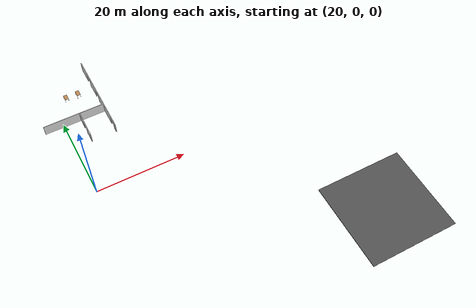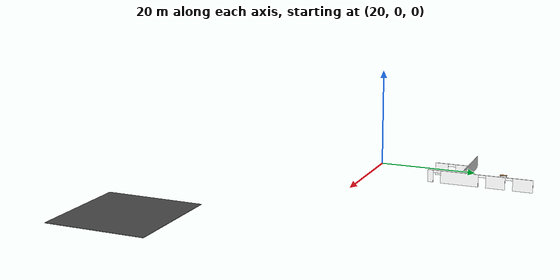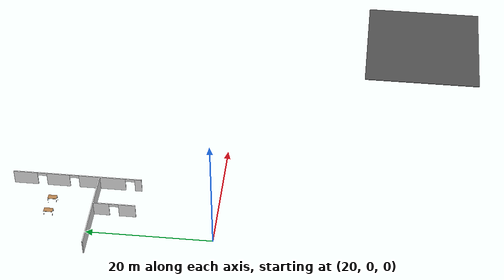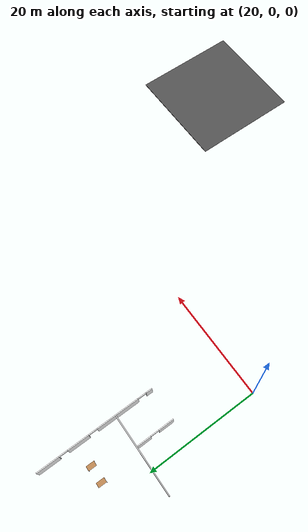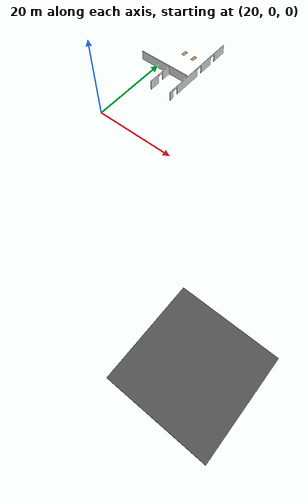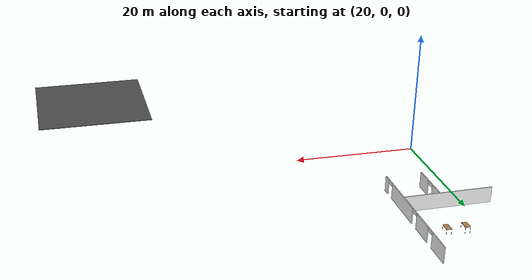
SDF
<sdf version="1.6">
 <world name="default">
  <model name="mainoffice">
   <pose>42.7555 15.4488 0 0 -0 0</pose>
   <link name="Wall_86">
    <pose>-13.0991 7.625 0 0 -0 1.5708</pose>
    <visual name="Wall_86_Visual_0">
     <pose>-9.82339 0 1.25 0 -0 0</pose>
     <geometry><box><size>1.10323 0.15 2.5</size></box></geometry>
     <material>
      <script>
       <uri>model://office_env/materials/scripts</uri>
       <uri>model://office_env/materials/textures</uri>
       <name>wall</name>
      </script>
      <ambient>1 1 1 1</ambient>
     </material>
    </visual>
    <collision name="Wall_86_Collision_0">
     <geometry><box><size>1.10323 0.15 2.5</size></box></geometry>
     <pose>-9.82339 0 1.25 0 -0 0</pose>
    </collision>
    <visual name="Wall_86_Visual_1">
     <pose>-3.99947 0 1.25 0 -0 0</pose>
     <geometry><box><size>7.5446 0.15 2.5</size></box></geometry>
     <material>
      <script>
       <uri>model://office_env/materials/scripts</uri>
       <uri>model://office_env/materials/textures</uri>
       <name>wall</name>
      </script>
      <ambient>1 1 1 1</ambient>
     </material>
    </visual>
    <collision name="Wall_86_Collision_1">
     <geometry><box><size>7.5446 0.15 2.5</size></box></geometry>
     <pose>-3.99947 0 1.25 0 -0 0</pose>
    </collision>
    <visual name="Wall_86_Visual_2">
     <pose>3.13776 0 1.25 0 -0 0</pose>
     <geometry><box><size>3.72987 0.15 2.5</size></box></geometry>
     <material>
      <script>
       <uri>model://office_env/materials/scripts</uri>
       <uri>model://office_env/materials/textures</uri>
       <name>wall</name>
      </script>
      <ambient>1 1 1 1</ambient>
     </material>
    </visual>
    <collision name="Wall_86_Collision_2">
     <geometry><box><size>3.72987 0.15 2.5</size></box></geometry>
     <pose>3.13776 0 1.25 0 -0 0</pose>
    </collision>
    <visual name="Wall_86_Visual_3">
     <pose>8.43885 0 1.25 0 -0 0</pose>
     <geometry><box><size>3.8723 0.15 2.5</size></box></geometry>
     <material>
      <script>
       <uri>model://office_env/materials/scripts</uri>
       <uri>model://office_env/materials/textures</uri>
       <name>wall</name>
      </script>
      <ambient>1 1 1 1</ambient>
     </material>
    </visual>
    <collision name="Wall_86_Collision_3">
     <geometry><box><size>3.8723 0.15 2.5</size></box></geometry>
     <pose>8.43885 0 1.25 0 -0 0</pose>
    </collision>
    <visual name="Wall_86_Visual_4">
     <pose>-8.52177 0 2.25 0 -0 0</pose>
     <geometry><box><size>1.5 0.15 0.5</size></box></geometry>
     <material>
      <script>
       <uri>model://office_env/materials/scripts</uri>
       <uri>model://office_env/materials/textures</uri>
       <name>wall</name>
      </script>
      <ambient>1 1 1 1</ambient>
     </material>
    </visual>
    <collision name="Wall_86_Collision_4">
     <geometry><box><size>1.5 0.15 0.5</size></box></geometry>
     <pose>-8.52177 0 2.25 0 -0 0</pose>
    </collision>
    <visual name="Wall_86_Visual_5">
     <pose>0.522826 0 2.25 0 -0 0</pose>
     <geometry><box><size>1.5 0.15 0.5</size></box></geometry>
     <material>
      <script>
       <uri>model://office_env/materials/scripts</uri>
       <uri>model://office_env/materials/textures</uri>
       <name>wall</name>
      </script>
      <ambient>1 1 1 1</ambient>
     </material>
    </visual>
    <collision name="Wall_86_Collision_5">
     <geometry><box><size>1.5 0.15 0.5</size></box></geometry>
     <pose>0.522826 0 2.25 0 -0 0</pose>
    </collision>
    <visual name="Wall_86_Visual_6">
     <pose>5.7527 0 2.25 0 -0 0</pose>
     <geometry><box><size>1.5 0.15 0.5</size></box></geometry>
     <material>
      <script>
       <uri>model://office_env/materials/scripts</uri>
       <uri>model://office_env/materials/textures</uri>
       <name>wall</name>
      </script>
      <ambient>1 1 1 1</ambient>
     </material>
    </visual>
    <collision name="Wall_86_Collision_6">
     <geometry><box><size>1.5 0.15 0.5</size></box></geometry>
     <pose>5.7527 0 2.25 0 -0 0</pose>
    </collision>
   </link>
   <link name="Wall_88">
    <collision name="Wall_88_Collision">
     <geometry><box><size>14 0.15 2.5</size></box></geometry>
     <pose>0 0 1.25 0 -0 0</pose>
    </collision>
    <visual name="Wall_88_Visual">
     <pose>0 0 1.25 0 -0 0</pose>
     <geometry><box><size>14 0.15 2.5</size></box></geometry>
     <material>
      <script>
       <uri>model://office_env/materials/scripts</uri>
       <uri>model://office_env/materials/textures</uri>
       <name>wall</name>
      </script>
      <ambient>1 1 1 1</ambient>
     </material>
    </visual>
    <pose>-20.1147 4.02546 0 0 -0 3.14159</pose>
   </link>
   <link name="Wall_90">
    <pose>-18.7887 0.663928 0 0 0 -1.5708</pose>
    <visual name="Wall_90_Visual_0">
     <pose>-2.08201 0 1.25 0 -0 0</pose>
     <geometry><box><size>2.58598 0.15 2.5</size></box></geometry>
     <material>
      <script>
       <uri>model://office_env/materials/scripts</uri>
       <uri>model://office_env/materials/textures</uri>
       <name>wall</name>
      </script>
      <ambient>1 1 1 1</ambient>
     </material>
    </visual>
    <collision name="Wall_90_Collision_0">
     <geometry><box><size>2.58598 0.15 2.5</size></box></geometry>
     <pose>-2.08201 0 1.25 0 -0 0</pose>
    </collision>
    <visual name="Wall_90_Visual_1">
     <pose>2.04299 0 1.25 0 -0 0</pose>
     <geometry><box><size>2.66402 0.15 2.5</size></box></geometry>
     <material>
      <script>
       <uri>model://office_env/materials/scripts</uri>
       <uri>model://office_env/materials/textures</uri>
       <name>wall</name>
      </script>
      <ambient>1 1 1 1</ambient>
     </material>
    </visual>
    <collision name="Wall_90_Collision_1">
     <geometry><box><size>2.66402 0.15 2.5</size></box></geometry>
     <pose>2.04299 0 1.25 0 -0 0</pose>
    </collision>
    <visual name="Wall_90_Visual_2">
     <pose>-0.039023 0 2.25 0 -0 0</pose>
     <geometry><box><size>1.5 0.15 0.5</size></box></geometry>
     <material>
      <script>
       <uri>model://office_env/materials/scripts</uri>
       <uri>model://office_env/materials/textures</uri>
       <name>wall</name>
      </script>
      <ambient>1 1 1 1</ambient>
     </material>
    </visual>
    <collision name="Wall_90_Collision_2">
     <geometry><box><size>1.5 0.15 0.5</size></box></geometry>
     <pose>-0.039023 0 2.25 0 -0 0</pose>
    </collision>
   </link>
   <static>1</static>
  </model>
  <model name="asphalt_plane">
   <static>1</static>
   <link name="link">
    <collision name="collision"><geometry><box><size>20 20 0.1</size></box></geometry></collision>
    <visual name="visual">
     <cast_shadows>0</cast_shadows>
     <geometry><box><size>20 20 0.1</size></box></geometry>
     <material>
      <script>
       <uri>model://asphalt_plane/materials/scripts</uri>
       <uri>model://asphalt_plane/materials/textures</uri>
       <name>vrc/asphalt</name>
      </script>
     </material>
    </visual>
   </link>
   <pose>70.7475 -31.5972 0 0 -0 0</pose>
  </model>
  <model name="table_3_clone_clone_clone_0">
   <static>0</static>
   <link name="link">
    <collision name="surface">
     <pose>0 0 1 0 -0 0</pose>
     <geometry><box><size>1.5 0.8 0.03</size></box></geometry>
     <surface><friction><ode><mu>0.6</mu><mu2>0.6</mu2></ode></friction></surface>
    </collision>
    <visual name="visual1">
     <pose>0 0 1 0 -0 0</pose>
     <geometry><box><size>1.4 0.8 0.04</size></box></geometry>
     <material>
      <script><uri>file://media/materials/scripts/gazebo.material</uri><name>Gazebo/Wood</name></script>
     </material>
    </visual>
    <collision name="front_left_leg">
     <pose>0.68 0.38 0.5 0 -0 0</pose>
     <geometry><cylinder><radius>0.02</radius><length>1</length></cylinder></geometry>
    </collision>
    <visual name="front_left_leg">
     <pose>0.68 0.38 0.5 0 -0 0</pose>
     <geometry><cylinder><radius>0.02</radius><length>1</length></cylinder></geometry>
     <material>
      <script>
       <uri>model://office_env/materials/scripts</uri>
       <uri>model://office_env/materials/textures</uri>
       <name>wall</name>
      </script>
     </material>
    </visual>
    <collision name="front_right_leg">
     <pose>0.68 -0.38 0.5 0 -0 0</pose>
     <geometry><cylinder><radius>0.02</radius><length>1</length></cylinder></geometry>
    </collision>
    <visual name="front_right_leg">
     <pose>0.68 -0.38 0.5 0 -0 0</pose>
     <geometry><cylinder><radius>0.02</radius><length>1</length></cylinder></geometry>
     <material>
      <script>
       <uri>model://office_env/materials/scripts</uri>
       <uri>model://office_env/materials/textures</uri>
       <name>wall</name>
      </script>
     </material>
    </visual>
    <collision name="back_right_leg">
     <pose>-0.68 -0.38 0.5 0 -0 0</pose>
     <geometry><cylinder><radius>0.02</radius><length>1</length></cylinder></geometry>
    </collision>
    <visual name="back_right_leg">
     <pose>-0.68 -0.38 0.5 0 -0 0</pose>
     <geometry><cylinder><radius>0.02</radius><length>1</length></cylinder></geometry>
     <material>
      <script>
       <uri>model://office_env/materials/scripts</uri>
       <uri>model://office_env/materials/textures</uri>
       <name>wall</name>
      </script>
     </material>
    </visual>
    <collision name="back_left_leg">
     <pose>-0.68 0.38 0.5 0 -0 0</pose>
     <geometry><cylinder><radius>0.02</radius><length>1</length></cylinder></geometry>
    </collision>
    <visual name="back_left_leg">
     <pose>-0.68 0.38 0.5 0 -0 0</pose>
     <geometry><cylinder><radius>0.02</radius><length>1</length></cylinder></geometry>
     <material>
      <script>
       <uri>model://office_env/materials/scripts</uri>
       <uri>model://office_env/materials/textures</uri>
       <name>wall</name>
      </script>
     </material>
    </visual>
    <inertial>
     <inertia><ixx>1</ixx><ixy>0</ixy><ixz>0</ixz><iyy>1</iyy><iyz>0</iyz><izz>1</izz></inertia>
     <mass>1</mass>
    </inertial>
   </link>
   <pose>23.1004 26.4884 0.034999 0 0 -1.58064</pose>
  </model>
  <model name="table_3_clone_clone_clone_3">
   <static>0</static>
   <link name="link">
    <collision name="surface">
     <pose>0 0 1 0 -0 0</pose>
     <geometry><box><size>1.5 0.8 0.03</size></box></geometry>
     <surface><friction><ode><mu>0.6</mu><mu2>0.6</mu2></ode></friction></surface>
    </collision>
    <visual name="visual1">
     <pose>0 0 1 0 -0 0</pose>
     <geometry><box><size>1.4 0.8 0.04</size></box></geometry>
     <material>
      <script><uri>file://media/materials/scripts/gazebo.material</uri><name>Gazebo/Wood</name></script>
     </material>
    </visual>
    <collision name="front_left_leg">
     <pose>0.68 0.38 0.5 0 -0 0</pose>
     <geometry><cylinder><radius>0.02</radius><length>1</length></cylinder></geometry>
    </collision>
    <visual name="front_left_leg">
     <pose>0.68 0.38 0.5 0 -0 0</pose>
     <geometry><cylinder><radius>0.02</radius><length>1</length></cylinder></geometry>
     <material>
      <script>
       <uri>model://office_env/materials/scripts</uri>
       <uri>model://office_env/materials/textures</uri>
       <name>wall</name>
      </script>
     </material>
    </visual>
    <collision name="front_right_leg">
     <pose>0.68 -0.38 0.5 0 -0 0</pose>
     <geometry><cylinder><radius>0.02</radius><length>1</length></cylinder></geometry>
    </collision>
    <visual name="front_right_leg">
     <pose>0.68 -0.38 0.5 0 -0 0</pose>
     <geometry><cylinder><radius>0.02</radius><length>1</length></cylinder></geometry>
     <material>
      <script>
       <uri>model://office_env/materials/scripts</uri>
       <uri>model://office_env/materials/textures</uri>
       <name>wall</name>
      </script>
     </material>
    </visual>
    <collision name="back_right_leg">
     <pose>-0.68 -0.38 0.5 0 -0 0</pose>
     <geometry><cylinder><radius>0.02</radius><length>1</length></cylinder></geometry>
    </collision>
    <visual name="back_right_leg">
     <pose>-0.68 -0.38 0.5 0 -0 0</pose>
     <geometry><cylinder><radius>0.02</radius><length>1</length></cylinder></geometry>
     <material>
      <script>
       <uri>model://office_env/materials/scripts</uri>
       <uri>model://office_env/materials/textures</uri>
       <name>wall</name>
      </script>
     </material>
    </visual>
    <collision name="back_left_leg">
     <pose>-0.68 0.38 0.5 0 -0 0</pose>
     <geometry><cylinder><radius>0.02</radius><length>1</length></cylinder></geometry>
    </collision>
    <visual name="back_left_leg">
     <pose>-0.68 0.38 0.5 0 -0 0</pose>
     <geometry><cylinder><radius>0.02</radius><length>1</length></cylinder></geometry>
     <material>
      <script>
       <uri>model://office_env/materials/scripts</uri>
       <uri>model://office_env/materials/textures</uri>
       <name>wall</name>
      </script>
     </material>
    </visual>
    <inertial>
     <inertia><ixx>1</ixx><ixy>0</ixy><ixz>0</ixz><iyy>1</iyy><iyz>0</iyz><izz>1</izz></inertia>
     <mass>1</mass>
    </inertial>
   </link>
   <pose>25.9264 26.4512 0.034999 0 0 -1.58064</pose>
  </model>
 </world>
</sdf>
